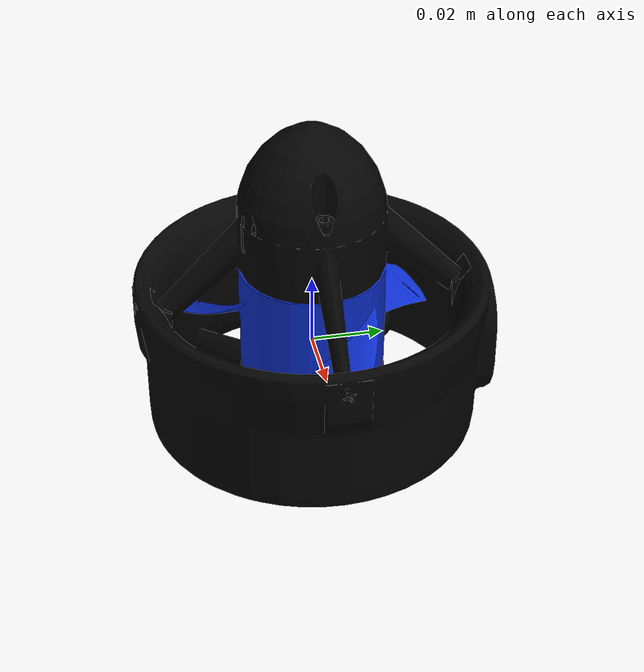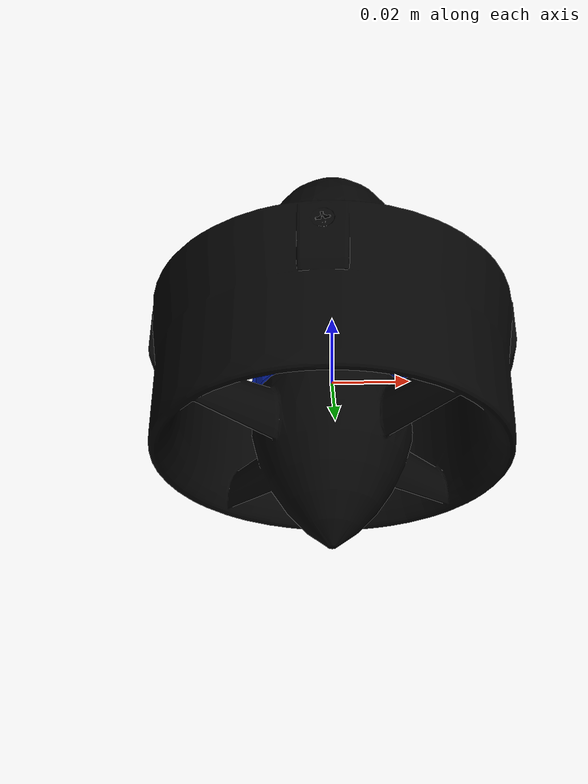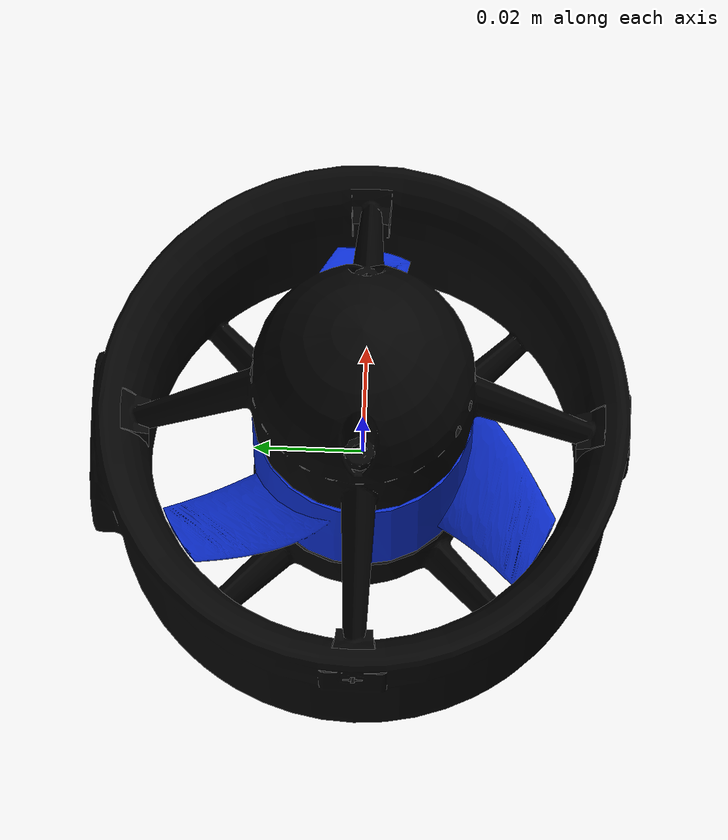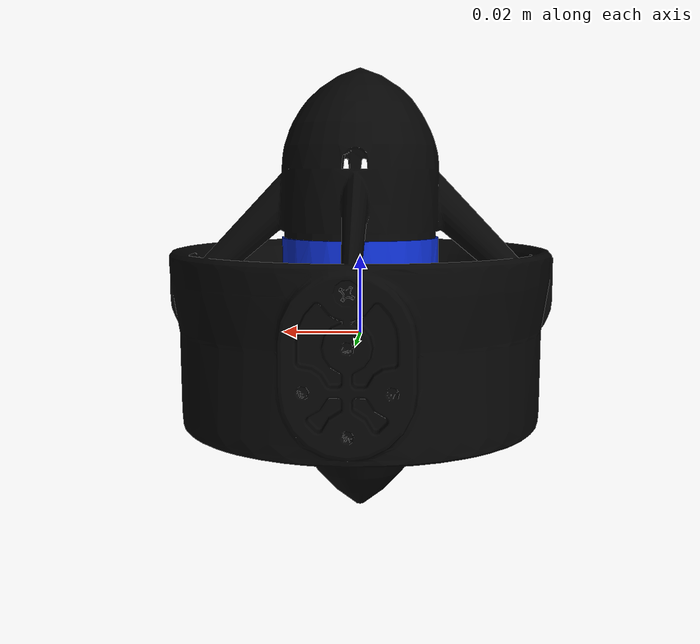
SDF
<?xml version='1.0'?>
<sdf version='1.6'>
  <model name='T200_Thruster_CCW'>

    <link name='thruster_link'>
      <pose>0 0 0 0 0 0</pose>
      <inertial>
        <mass>0.344</mass>
        <inertia>
          <ixx>0</ixx>
          <ixy>0</ixy>
          <ixz>0</ixz>
          <iyy>0</iyy>
          <iyz>0</iyz>
          <izz>0</izz>
        </inertia>
      </inertial>
      <visual name='thruster_link_visual'>
        <geometry>
          <mesh>
            <scale>1 1 1</scale>
            <uri>model://T200_Thruster_CCW/meshes/T200_Thruster.dae</uri>
          </mesh>
        </geometry>
      </visual>
    </link>

    <link name='prop'>
      <pose>0 0 0 0 0 0</pose>
      <inertial>
        <mass>1e-10</mass>
        <inertia>
          <ixx>0</ixx>
          <ixy>0</ixy>
          <ixz>0</ixz>
          <iyy>0</iyy>
          <iyz>0</iyz>
          <izz>0</izz>
        </inertia>
      </inertial>
      <visual name='prop_visual'>
        <geometry>
          <mesh>
            <scale>1 1 1</scale>
            <uri>model://T200_Thruster_CCW/meshes/T200_Prop_CCW.dae</uri>
          </mesh>
        </geometry>
      </visual>
    </link>
    <joint name='Prop_joint' type='revolute'>
      <parent>thruster_link</parent>
      <child>prop</child>
      <pose frame=''>0 0 0 0 0 0</pose>
      <axis>
        <xyz>0 0 1</xyz>
        <use_parent_model_frame>0</use_parent_model_frame>
      </axis>
    </joint>

    <plugin name='blade_1' filename='libLiftDragPlugin.so'>
      <a0>0.3</a0>
      <alpha_stall>1.4</alpha_stall>
      <cla>4.2500</cla>
      <cda>0.10</cda>
      <cma>0.00</cma>
      <cla_stall>-0.025</cla_stall>
      <cda_stall>0.0</cda_stall>
      <cma_stall>0.0</cma_stall>
      <area>0.002</area>
      <air_density>1.2041</air_density>
      <cp>0.084 0 0</cp>
      <forward>0 -1 0</forward>
      <upward>0 0 1</upward>
      <link_name>prop</link_name>
    </plugin>

    <plugin name='blade_2' filename='libLiftDragPlugin.so'>
      <a0>0.3</a0>
      <alpha_stall>1.4</alpha_stall>
      <cla>4.2500</cla>
      <cda>0.10</cda>
      <cma>0.00</cma>
      <cla_stall>-0.025</cla_stall>
      <cda_stall>0.0</cda_stall>
      <cma_stall>0.0</cma_stall>
      <area>0.002</area>
      <air_density>1.2041</air_density>
      <cp>-0.084 0 0</cp>
      <forward>0 1 0</forward>
      <upward>0 0 1</upward>
      <link_name>prop</link_name>
    </plugin>

    <plugin name='freebuoyancy_gazebo' filename='libfreebuoyancy_gazebo.so'>
      <descriptionParam>robot_description</descriptionParam>
      <fluidTopic>current</fluidTopic>
      <alwaysOn>true</alwaysOn>
      <surface>0 0 0</surface>
      <updateRate>.001</updateRate>
      <link name='thruster_link'>
        <buoyancy>
          <compensation>1.0</compensation>
          <origin xyz='0 0 0'/>
        </buoyancy>
      </link>
    </plugin>

    <static>0</static>
    <allow_auto_disable>1</allow_auto_disable>
  </model>
</sdf>
